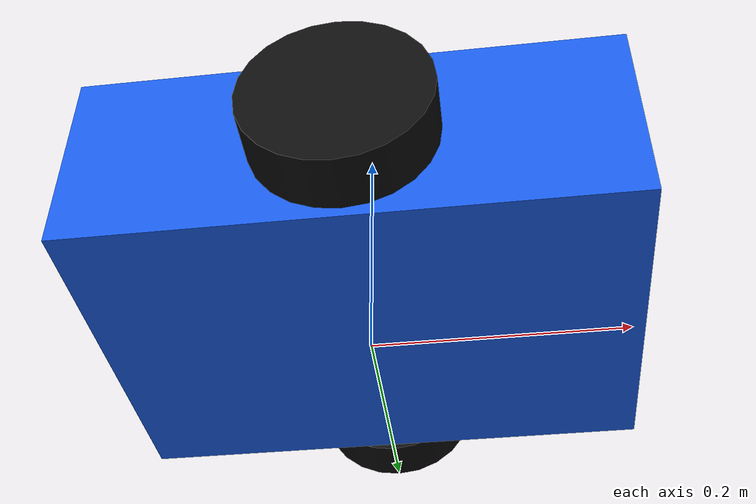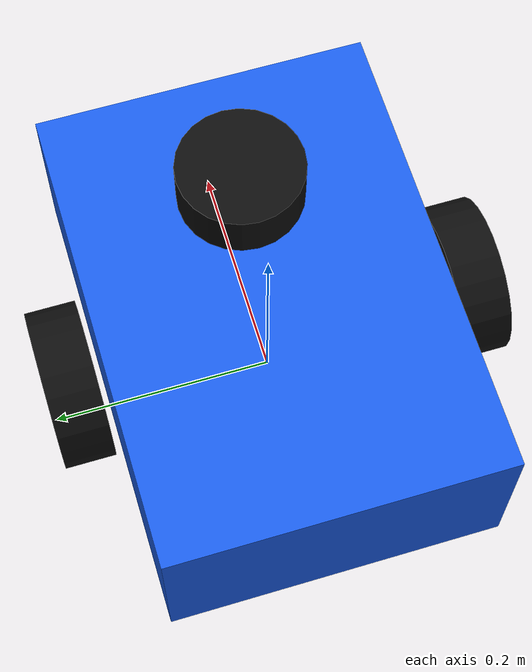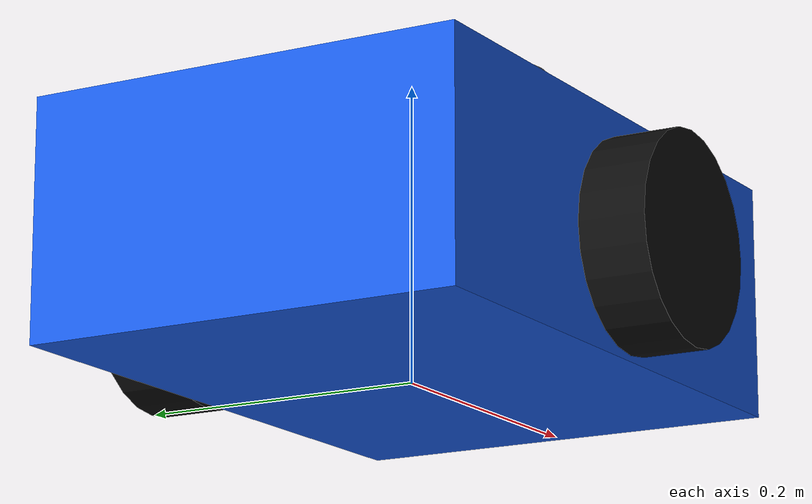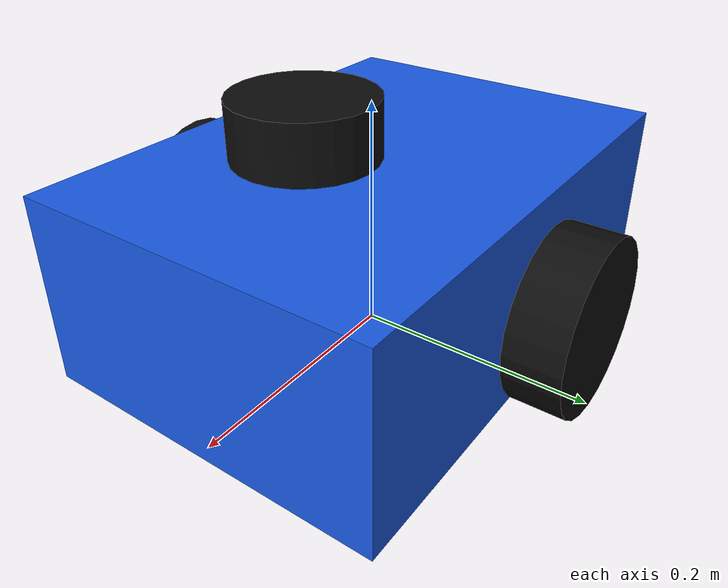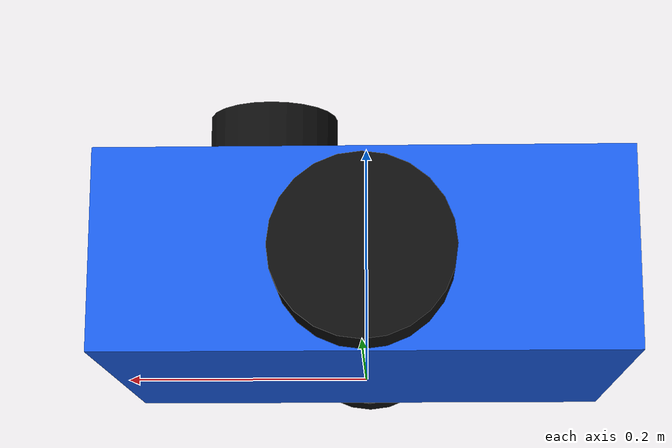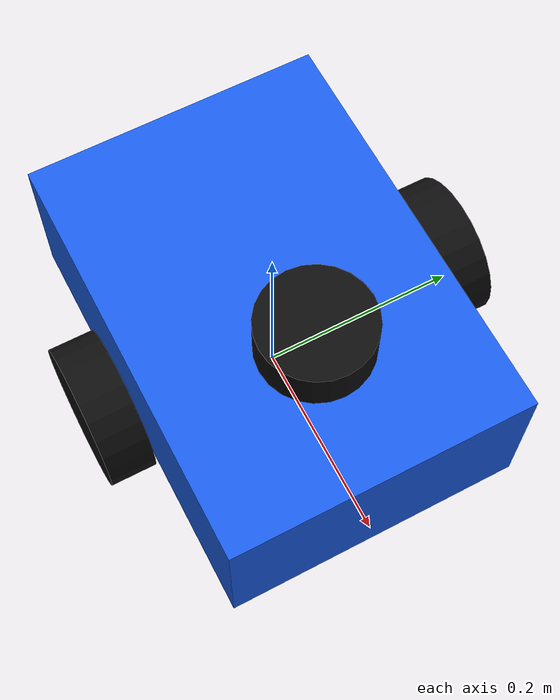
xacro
<?xml version="1.0"?>
<robot name="small_diffbot" xmlns:xacro="http://www.ros.org/wiki/xacro">
  <link name="base_link">
    <inertial>
      <origin xyz="0 0 0.06" rpy="0 0 0"/>
      <mass value="3.0"/>
      <inertia ixx="0.035" ixy="0" ixz="0" iyy="0.045" iyz="0" izz="0.060"/>
    </inertial>
    <visual>
      <origin xyz="0 0 0.08" rpy="0 0 0"/>
      <geometry>
        <box size="0.42 0.30 0.16"/>
      </geometry>
      <material name="blue">
        <color rgba="0.10 0.36 0.90 1.0"/>
      </material>
    </visual>
    <collision>
      <origin xyz="0 0 0.08" rpy="0 0 0"/>
      <geometry>
        <box size="0.42 0.30 0.16"/>
      </geometry>
    </collision>
  </link>

  <link name="left_wheel">
    <inertial>
      <origin xyz="0 0 0" rpy="0 0 0"/>
      <mass value="0.25"/>
      <inertia ixx="0.0006" ixy="0" ixz="0" iyy="0.0006" iyz="0" izz="0.0010"/>
    </inertial>
    <visual>
      <origin xyz="0 0 0" rpy="1.57079632679 0 0"/>
      <geometry>
        <cylinder radius="0.07" length="0.045"/>
      </geometry>
      <material name="dark">
        <color rgba="0.05 0.05 0.05 1.0"/>
      </material>
    </visual>
    <collision>
      <origin xyz="0 0 0" rpy="1.57079632679 0 0"/>
      <geometry>
        <cylinder radius="0.07" length="0.045"/>
      </geometry>
    </collision>
  </link>

  <link name="right_wheel">
    <inertial>
      <origin xyz="0 0 0" rpy="0 0 0"/>
      <mass value="0.25"/>
      <inertia ixx="0.0006" ixy="0" ixz="0" iyy="0.0006" iyz="0" izz="0.0010"/>
    </inertial>
    <visual>
      <origin xyz="0 0 0" rpy="1.57079632679 0 0"/>
      <geometry>
        <cylinder radius="0.07" length="0.045"/>
      </geometry>
      <material name="dark"/>
    </visual>
    <collision>
      <origin xyz="0 0 0" rpy="1.57079632679 0 0"/>
      <geometry>
        <cylinder radius="0.07" length="0.045"/>
      </geometry>
    </collision>
  </link>

  <link name="caster_link">
    <inertial>
      <origin xyz="0 0 0" rpy="0 0 0"/>
      <mass value="0.05"/>
      <inertia ixx="0.00005" ixy="0" ixz="0" iyy="0.00005" iyz="0" izz="0.00005"/>
    </inertial>
    <visual>
      <origin xyz="0 0 0" rpy="0 0 0"/>
      <geometry>
        <sphere radius="0.035"/>
      </geometry>
      <material name="grey">
        <color rgba="0.45 0.45 0.45 1.0"/>
      </material>
    </visual>
    <collision>
      <origin xyz="0 0 0" rpy="0 0 0"/>
      <geometry>
        <sphere radius="0.035"/>
      </geometry>
    </collision>
  </link>

  <link name="laser_link">
    <inertial>
      <origin xyz="0 0 0" rpy="0 0 0"/>
      <mass value="0.08"/>
      <inertia ixx="0.0001" ixy="0" ixz="0" iyy="0.0001" iyz="0" izz="0.0001"/>
    </inertial>
    <visual>
      <origin xyz="0 0 0" rpy="0 0 0"/>
      <geometry>
        <cylinder radius="0.055" length="0.045"/>
      </geometry>
      <material name="lidar">
        <color rgba="0.05 0.05 0.05 1.0"/>
      </material>
    </visual>
    <collision>
      <origin xyz="0 0 0" rpy="0 0 0"/>
      <geometry>
        <cylinder radius="0.055" length="0.045"/>
      </geometry>
    </collision>
  </link>

  <joint name="left_wheel_joint" type="continuous">
    <parent link="base_link"/>
    <child link="left_wheel"/>
    <origin xyz="0 0.18 0.07" rpy="0 0 0"/>
    <axis xyz="0 1 0"/>
  </joint>

  <joint name="right_wheel_joint" type="continuous">
    <parent link="base_link"/>
    <child link="right_wheel"/>
    <origin xyz="0 -0.18 0.07" rpy="0 0 0"/>
    <axis xyz="0 1 0"/>
  </joint>

  <joint name="caster_joint" type="fixed">
    <parent link="base_link"/>
    <child link="caster_link"/>
    <origin xyz="-0.17 0 0.035" rpy="0 0 0"/>
  </joint>

  <joint name="laser_joint" type="fixed">
    <parent link="base_link"/>
    <child link="laser_link"/>
    <origin xyz="0.08 0 0.205" rpy="0 0 0"/>
  </joint>

  <gazebo reference="base_link">
    <material>Gazebo/Blue</material>
  </gazebo>
  <gazebo reference="left_wheel">
    <material>Gazebo/Black</material>
    <mu1>1.0</mu1>
    <mu2>1.0</mu2>
  </gazebo>
  <gazebo reference="right_wheel">
    <material>Gazebo/Black</material>
    <mu1>1.0</mu1>
    <mu2>1.0</mu2>
  </gazebo>
  <gazebo reference="caster_link">
    <material>Gazebo/Grey</material>
    <mu1>0.05</mu1>
    <mu2>0.05</mu2>
  </gazebo>

  <gazebo reference="laser_link">
    <sensor name="laser" type="ray">
      <always_on>true</always_on>
      <visualize>true</visualize>
      <update_rate>12.0</update_rate>
      <pose>0 0 0 0 0 0</pose>
      <ray>
        <scan>
          <horizontal>
            <samples>360</samples>
            <resolution>1</resolution>
            <min_angle>-3.14159265359</min_angle>
            <max_angle>3.14159265359</max_angle>
          </horizontal>
        </scan>
        <range>
          <min>0.12</min>
          <max>6.0</max>
          <resolution>0.01</resolution>
        </range>
        <noise>
          <type>gaussian</type>
          <mean>0.0</mean>
          <stddev>0.003</stddev>
        </noise>
      </ray>
      <plugin name="gazebo_ros_laser" filename="libgazebo_ros_ray_sensor.so">
        <ros>
          <remapping>~/out:=scan</remapping>
        </ros>
        <output_type>sensor_msgs/LaserScan</output_type>
        <frame_name>laser_link</frame_name>
      </plugin>
    </sensor>
  </gazebo>

  <gazebo>
    <plugin name="small_diffbot_drive" filename="libgazebo_ros_diff_drive.so">
      <ros>
        <remapping>cmd_vel:=cmd_vel</remapping>
        <remapping>odom:=odom</remapping>
      </ros>
      <update_rate>50</update_rate>
      <left_joint>left_wheel_joint</left_joint>
      <right_joint>right_wheel_joint</right_joint>
      <wheel_separation>0.36</wheel_separation>
      <wheel_diameter>0.14</wheel_diameter>
      <max_wheel_torque>20.0</max_wheel_torque>
      <max_wheel_acceleration>1.2</max_wheel_acceleration>
      <command_topic>cmd_vel</command_topic>
      <odometry_topic>odom</odometry_topic>
      <odometry_frame>odom</odometry_frame>
      <robot_base_frame>base_link</robot_base_frame>
      <odometry_source>world</odometry_source>
      <publish_odom>true</publish_odom>
      <publish_odom_tf>true</publish_odom_tf>
      <publish_wheel_tf>true</publish_wheel_tf>
    </plugin>
  </gazebo>
</robot>
